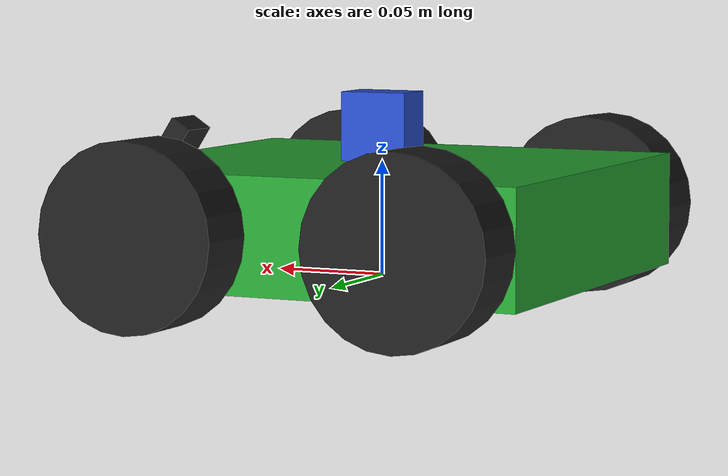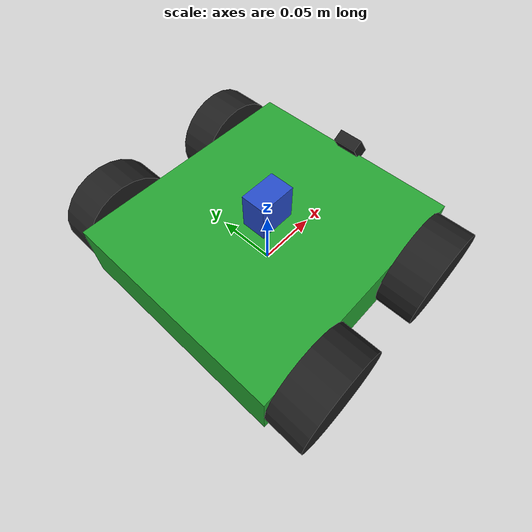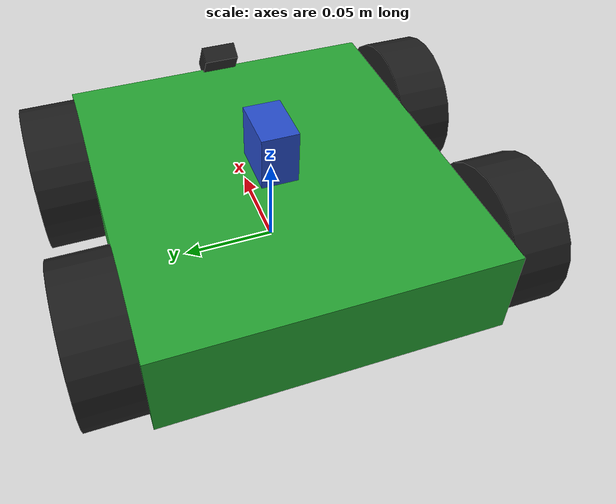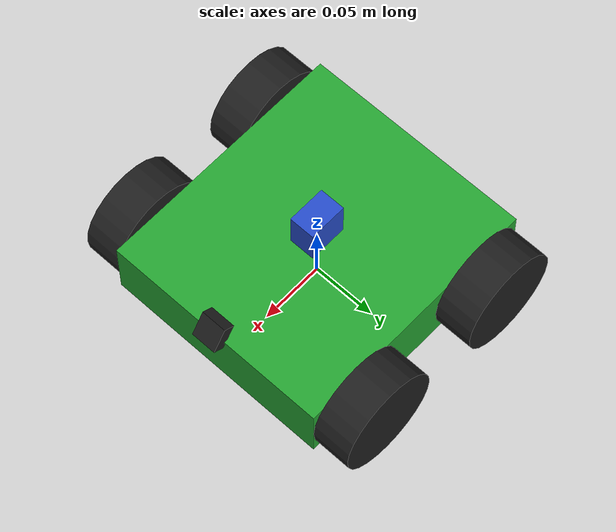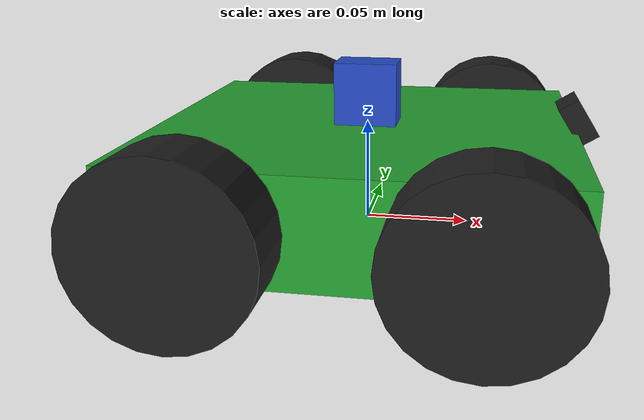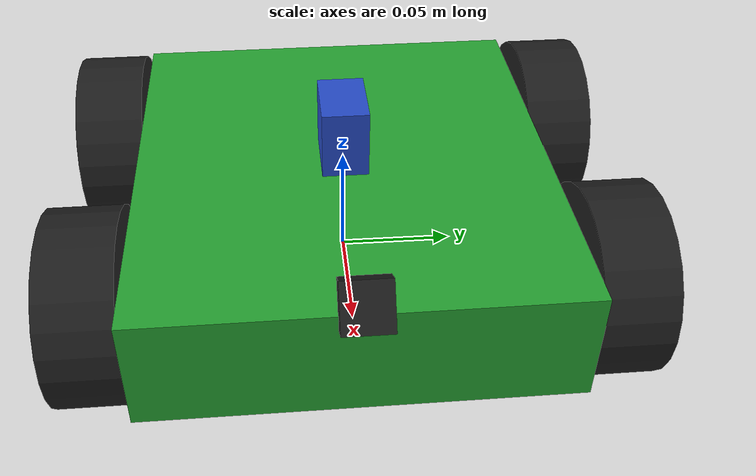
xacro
<?xml version="1.0"?>
<robot xmlns:xacro="http://www.ros.org/wiki/xacro" name="awd_robot">

    <xacro:include filename="utils.urdf.xacro" />
    <xacro:include filename="awdbot/awdbot_include.xacro" />

    <!-- Start GZ or Ignition depending on ROS 2 Version -->
    <xacro:arg name="is_ignition" default="true"/>

    <!-- Load Simulated or Real Hardware Interfaces -->
    <xacro:arg name="is_sim" default="true"/>

    <xacro:arg name="port_name"  default="/dev/ttyACM0"/>
    <xacro:arg name="baud_rate"  default="57600"/>

    <xacro:arg name="dxl1_id" default="1"/>
    <xacro:arg name="dxl2_id" default="2"/>
    <xacro:arg name="dxl3_id" default="3"/>
    <xacro:arg name="dxl4_id" default="4"/>

    <!-- Include Gazebo Parameters -->
    <xacro:include filename="awdbot/awdbot_gazebo.xacro" />

    <!-- Include ros2_control Plugins -->
    <xacro:include filename="awdbot/awdbot_ros2_control.xacro" />

    <link name="base_footprint"/>

    <joint name="base_joint" type="fixed">
        <parent link="base_footprint" />
        <child link="base_link" />
        <origin rpy="0 0 0" xyz="0 0 ${chassis_height/2}" />
    </joint>

    <link name="base_link">
        <xacro:box_inertial name="base_link" m="${chassis_mass}" x="${chassis_length}" y="${chassis_width}" z="${chassis_height}" />
        <collision name="chassis_collision">
            <geometry>
                <box size="${chassis_length} ${chassis_width} ${chassis_height}" />
            </geometry>
        </collision>
        <visual name="base_link_visual">
            <origin xyz="0 0 0" rpy=" 0 0 0" />
            <geometry>
                <box size="${chassis_length} ${chassis_width} ${chassis_height}" />
            </geometry>
            <material name="green"/>
        </visual>
    </link>
    <link name="wheel_front_right">
        <xacro:cylinder_inertial name="wheel_front_right" m="${wheel_mass}" r="${wheel_radius}" h="${wheel_width}" />
        <collision name="wheel_FR_collision">
            <origin xyz="0 0 0" rpy="1.5708 0 0" />
            <geometry>
                <cylinder radius="${wheel_radius}" length="${wheel_width}" />
            </geometry>
        </collision>
        <visual name="wheel_FR_visual">
            <origin xyz="0 0 0" rpy="1.5708 0 0" />
            <geometry>
                <cylinder radius="${wheel_radius}" length="${wheel_width}" />
            </geometry>
            <material name="black"/>
        </visual>
    </link>
    <link name="wheel_front_left">
        <xacro:cylinder_inertial name="wheel_front_left" m="${wheel_mass}" r="${wheel_radius}" h="${wheel_width}" />
        <collision name="wheel_FL_collision">
            <origin xyz="0 0 0" rpy="1.5708 0 0" />
            <geometry>
                <cylinder radius="${wheel_radius}" length="${wheel_width}" />
            </geometry>
        </collision>
        <visual name="wheel_FL_visual">
            <origin xyz="0 0 0" rpy="1.5708 0 0" />
            <geometry>
                <cylinder radius="${wheel_radius}" length="${wheel_width}" />
            </geometry>
            <material name="black"/>
        </visual>
    </link>
    <link name="wheel_rear_right">
        <xacro:cylinder_inertial name="wheel_rear_right" m="${wheel_mass}" r="${wheel_radius}" h="${wheel_width}" />
        <collision name="wheel_RR_collision">
            <origin xyz="0 0 0" rpy="1.5708 0 0" />
            <geometry>
                <cylinder radius="${wheel_radius}" length="${wheel_width}" />
            </geometry>
        </collision>
        <visual name="wheel_RR_visual">
            <origin xyz="0 0 0" rpy="1.5708 0 0" />
            <geometry>
                <cylinder radius="${wheel_radius}" length="${wheel_width}" />
            </geometry>
            <material name="black"/>
        </visual>
    </link>
    <link name="wheel_rear_left">
        <xacro:cylinder_inertial name="wheel_rear_left" m="${wheel_mass}" r="${wheel_radius}" h="${wheel_width}" />
        <collision name="wheel_RL_collision">
            <origin xyz="0 0 0" rpy="1.5708 0 0" />
            <geometry>
                <cylinder radius="${wheel_radius}" length="${wheel_width}" />
            </geometry>
        </collision>
        <visual name="wheel_RL_visual">
            <origin xyz="0 0 0" rpy="1.5708 0 0" />
            <geometry>
                <cylinder radius="${wheel_radius}" length="${wheel_width}" />
            </geometry>
            <material name="black"/>
        </visual>
    </link>

    <link name="base_scan">
      <xacro:box_inertial name="base_scan" m="${lidar_mass}" x="${lidar_width}" y="${lidar_length}" z="${lidar_height}" />
        <collision name="lidar_sensor_collision">
            <origin xyz="0 0 ${-lidar_height/2+0.01}" rpy="0 0 0" />
            <geometry>
                <box size="${lidar_length} ${lidar_width} ${lidar_height}" />
            </geometry>
        </collision>
        <visual name="lidar_sensor_visual">
            <origin xyz="0 0 ${-lidar_height/2+0.01}" rpy="0 0 0" />
            <geometry>
                <box size="${lidar_length} ${lidar_width} ${lidar_height}" />
            </geometry>
            <material name="blue"/>
        </visual>
    </link>

    <link name="camera_link">
      <xacro:box_inertial name="camera_link" m="${camera_mass}" x="${camera_length}" y="${camera_width}" z="${camera_height}" />
      <visual name="camera_link_visual">
        <origin xyz="0 0 0" rpy="0 0 0"/>
        <material name="black"/>
        <geometry>
         <box size="${camera_length} ${camera_width} ${camera_height}"/>
        </geometry>
      </visual>
      <collision name="link_name_collision">
        <origin xyz="0 0 0" rpy="0 0 0"/>
        <geometry>
          <box size="${camera_length} ${camera_width} ${camera_height}"/>
        </geometry>
      </collision>
    </link>

    <joint name="wheel_front_right_joint" type="continuous">
        <parent link="base_link" />
        <child link="wheel_front_right" />
        <origin xyz="${chassis_length/2-wheel_radius} -${chassis_width/2+wheel_width/2} 0" rpy="0 0 0" />
        <axis xyz="0 1 0" />
    </joint>
    <joint name="wheel_front_left_joint" type="continuous">
        <parent link="base_link" />
        <child link="wheel_front_left" />
        <origin xyz="${chassis_length/2-wheel_radius} ${chassis_width/2+wheel_width/2} 0" rpy="0 0 0" />
        <axis xyz="0 1 0" />
    </joint>
    <joint name="wheel_rear_right_joint" type="continuous">
        <parent link="base_link" />
        <child link="wheel_rear_right" />
        <origin xyz="-${chassis_length/2-wheel_radius} -${chassis_width/2+wheel_width/2} 0" rpy="0 0 0" />
        <axis xyz="0 1 0" />
    </joint>
    <joint name="wheel_rear_left_joint" type="continuous">
        <parent link="base_link" />
        <child link="wheel_rear_left" />
        <origin xyz="-${chassis_length/2-wheel_radius} ${chassis_width/2+wheel_width/2} 0" rpy="0 0 0" />
        <axis xyz="0 1 0" />
    </joint>

    <joint name="camera_joint" type="fixed">
        <parent link="base_link"/>
        <child link="camera_link"/>
        <origin xyz="${chassis_length/2} 0 ${chassis_height/2 + camera_height/2}" rpy="0 1.0 0"/>
    </joint>

    <joint name="lidar_joint" type="fixed">
      <parent link="base_link"/>
      <child link="base_scan"/>
      <origin xyz="0 0 ${chassis_height/2 + lidar_height-0.01}" rpy="0 0 0"/>
      <axis xyz="0 0 1"/>
    </joint>

</robot>

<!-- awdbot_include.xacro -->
<robot xmlns:xacro="http://www.ros.org/wiki/xacro" name="awd_robot">

    <xacro:property name="camera_width" value="0.02" />
    <xacro:property name="camera_length" value="0.02" />
    <xacro:property name="camera_height" value="0.01" />
    <xacro:property name="camera_mass" value="0.01" />
    <xacro:property name="chassis_width" value="0.18" />
    <xacro:property name="chassis_length" value="0.2" />
    <xacro:property name="chassis_height" value="0.05" />
    <xacro:property name="chassis_mass" value="0.5" />
    <xacro:property name="wheel_radius" value="0.04" />
    <xacro:property name="wheel_width" value="0.03" />
    <xacro:property name="wheel_mass" value="0.025" />
	<xacro:property name="lidar_width" value="0.02" />
    <xacro:property name="lidar_length" value="0.03" />
    <xacro:property name="lidar_height" value="0.03" />
    <xacro:property name="lidar_mass" value="0.01" />

</robot>
